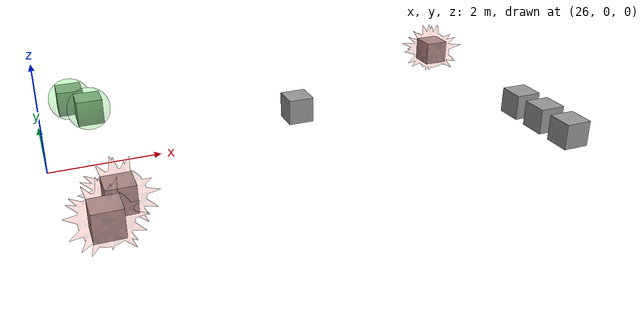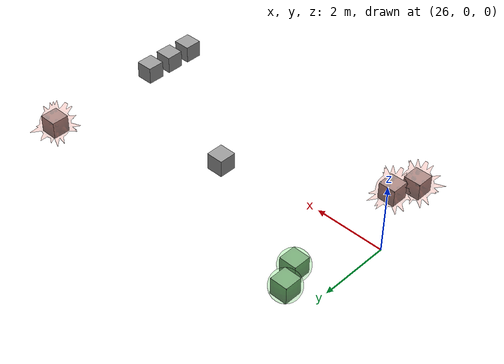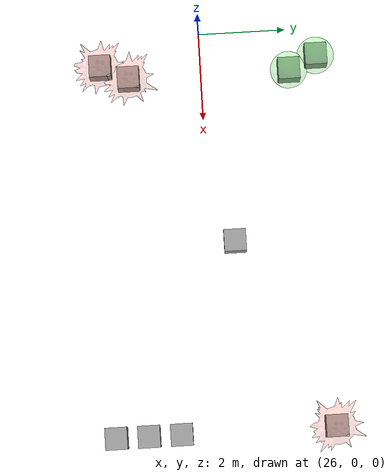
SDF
<sdf version="1.6">
 <world name="default">
  <model name="vis_cue_normal_2">
   <static>0</static>
   <pose>30.8778 0.555841 0.249997 0 -6e-06 0</pose>
   <link name="vis_cue_normal">
    <inertial>
     <mass>1</mass>
     <inertia>
      <ixx>0.166667</ixx>
      <ixy>0</ixy>
      <ixz>0</ixz>
      <iyy>0.166667</iyy>
      <iyz>0</iyz>
      <izz>0.166667</izz>
     </inertia>
    </inertial>
    <collision name="collision"><geometry><box><size>0.5 0.5 0.5</size></box></geometry></collision>
    <visual name="box_visual">
     <geometry><box><size>0.5 0.5 0.5</size></box></geometry>
     <material>
      <script><name>Gazebo/Grey</name><uri>file://media/materials/scripts/gazebo.material</uri></script>
     </material>
    </visual>
   </link>
  </model>
  <model name="trap_cont_2_ubias_m">
   <static>0</static>
   <static>0</static>
   <link name="repelling_cue_0::vis_cue_repel">
    <inertial>
     <mass>1</mass>
     <inertia>
      <ixx>0.166667</ixx>
      <ixy>0</ixy>
      <ixz>0</ixz>
      <iyy>0.166667</iyy>
      <iyz>0</iyz>
      <izz>0.166667</izz>
     </inertia>
    </inertial>
    <collision name="collision"><geometry><box><size>0.5 0.5 0.5</size></box></geometry></collision>
    <visual name="box_visual">
     <geometry><box><size>0.5 0.5 0.5</size></box></geometry>
     <material>
      <script><name>Gazebo/Grey</name><uri>file://media/materials/scripts/gazebo.material</uri></script>
     </material>
    </visual>
    <visual name="cue_visual">
     <geometry><mesh><uri>model://repelling_cue_2.dae</uri><scale>0.85 0.85 0.85</scale></mesh></geometry>
     <material>
      <ambient>1 0.3 0.2 0.2</ambient>
      <diffuse>1 0.3 0.2 0.2</diffuse>
      <specular>1 0.3 0.2 0.5</specular>
      <emissive>0.5 0 0 0.1</emissive>
     </material>
    </visual>
    <pose>0 -2.48 0.25 0 -0 0</pose>
   </link>
   <static>0</static>
   <link name="repelling_cue_1::vis_cue_repel">
    <inertial>
     <mass>1</mass>
     <inertia>
      <ixx>0.166667</ixx>
      <ixy>0</ixy>
      <ixz>0</ixz>
      <iyy>0.166667</iyy>
      <iyz>0</iyz>
      <izz>0.166667</izz>
     </inertia>
    </inertial>
    <collision name="collision"><geometry><box><size>0.5 0.5 0.5</size></box></geometry></collision>
    <visual name="box_visual">
     <geometry><box><size>0.5 0.5 0.5</size></box></geometry>
     <material>
      <script><name>Gazebo/Grey</name><uri>file://media/materials/scripts/gazebo.material</uri></script>
     </material>
    </visual>
    <visual name="cue_visual">
     <geometry><mesh><uri>model://repelling_cue_2.dae</uri><scale>0.85 0.85 0.85</scale></mesh></geometry>
     <material>
      <ambient>1 0.3 0.2 0.2</ambient>
      <diffuse>1 0.3 0.2 0.2</diffuse>
      <specular>1 0.3 0.2 0.5</specular>
      <emissive>0.5 0 0 0.1</emissive>
     </material>
    </visual>
    <pose>0.3 -1.845 0.25 0 -0 0</pose>
   </link>
   <static>0</static>
   <link name="attracting_cue_0::vis_cue_attract">
    <inertial>
     <mass>1</mass>
     <inertia>
      <ixx>0.166667</ixx>
      <ixy>0</ixy>
      <ixz>0</ixz>
      <iyy>0.166667</iyy>
      <iyz>0</iyz>
      <izz>0.166667</izz>
     </inertia>
    </inertial>
    <collision name="collision"><geometry><box><size>0.5 0.5 0.5</size></box></geometry></collision>
    <visual name="box_visual">
     <geometry><box><size>0.5 0.5 0.5</size></box></geometry>
     <material>
      <script><name>Gazebo/Grey</name><uri>file://media/materials/scripts/gazebo.material</uri></script>
     </material>
    </visual>
    <visual name="cue_visual">
     <geometry>
      <mesh><uri>model://vis_cue_attract/meshes/sphere.stl</uri><scale>0.85 0.85 0.85</scale></mesh>
     </geometry>
     <material>
      <ambient>0 1 0 0.15</ambient>
      <diffuse>0 1 0 0.15</diffuse>
      <specular>0 1 0 0.15</specular>
      <emissive>0 0 0 0</emissive>
     </material>
    </visual>
    <pose>0.3 1.845 0.25 0 -0 0</pose>
   </link>
   <static>0</static>
   <link name="attracting_cue_1::vis_cue_attract">
    <inertial>
     <mass>1</mass>
     <inertia>
      <ixx>0.166667</ixx>
      <ixy>0</ixy>
      <ixz>0</ixz>
      <iyy>0.166667</iyy>
      <iyz>0</iyz>
      <izz>0.166667</izz>
     </inertia>
    </inertial>
    <collision name="collision"><geometry><box><size>0.5 0.5 0.5</size></box></geometry></collision>
    <visual name="box_visual">
     <geometry><box><size>0.5 0.5 0.5</size></box></geometry>
     <material>
      <script><name>Gazebo/Grey</name><uri>file://media/materials/scripts/gazebo.material</uri></script>
     </material>
    </visual>
    <visual name="cue_visual">
     <geometry>
      <mesh><uri>model://vis_cue_attract/meshes/sphere.stl</uri><scale>0.85 0.85 0.85</scale></mesh>
     </geometry>
     <material>
      <ambient>0 1 0 0.15</ambient>
      <diffuse>0 1 0 0.15</diffuse>
      <specular>0 1 0 0.15</specular>
      <emissive>0 0 0 0</emissive>
     </material>
    </visual>
    <pose>0 2.48 0.25 0 -0 0</pose>
   </link>
   <pose>26.6934 0.180788 -2.1e-05 -7e-06 7e-06 0</pose>
  </model>
  <model name="trap_cont_1_repel_0">
   <static>0</static>
   <static>0</static>
   <link name="normal_cue_0::vis_cue_normal">
    <inertial>
     <mass>1</mass>
     <inertia>
      <ixx>0.166667</ixx>
      <ixy>0</ixy>
      <ixz>0</ixz>
      <iyy>0.166667</iyy>
      <iyz>0</iyz>
      <izz>0.166667</izz>
     </inertia>
    </inertial>
    <collision name="collision"><geometry><box><size>0.5 0.5 0.5</size></box></geometry></collision>
    <visual name="box_visual">
     <geometry><box><size>0.5 0.5 0.5</size></box></geometry>
     <material>
      <script><name>Gazebo/Grey</name><uri>file://media/materials/scripts/gazebo.material</uri></script>
     </material>
    </visual>
    <pose>0 -2.48 0.25 0 -0 0</pose>
   </link>
   <static>0</static>
   <link name="normal_cue_1::vis_cue_normal">
    <inertial>
     <mass>1</mass>
     <inertia>
      <ixx>0.166667</ixx>
      <ixy>0</ixy>
      <ixz>0</ixz>
      <iyy>0.166667</iyy>
      <iyz>0</iyz>
      <izz>0.166667</izz>
     </inertia>
    </inertial>
    <collision name="collision"><geometry><box><size>0.5 0.5 0.5</size></box></geometry></collision>
    <visual name="box_visual">
     <geometry><box><size>0.5 0.5 0.5</size></box></geometry>
     <material>
      <script><name>Gazebo/Grey</name><uri>file://media/materials/scripts/gazebo.material</uri></script>
     </material>
    </visual>
    <pose>0 -1.745 0.25 0 -0 0</pose>
   </link>
   <static>0</static>
   <link name="normal_cue_2::vis_cue_normal">
    <inertial>
     <mass>1</mass>
     <inertia>
      <ixx>0.166667</ixx>
      <ixy>0</ixy>
      <ixz>0</ixz>
      <iyy>0.166667</iyy>
      <iyz>0</iyz>
      <izz>0.166667</izz>
     </inertia>
    </inertial>
    <collision name="collision"><geometry><box><size>0.5 0.5 0.5</size></box></geometry></collision>
    <visual name="box_visual">
     <geometry><box><size>0.5 0.5 0.5</size></box></geometry>
     <material>
      <script><name>Gazebo/Grey</name><uri>file://media/materials/scripts/gazebo.material</uri></script>
     </material>
    </visual>
    <pose>0 -1.01 0.25 0 -0 0</pose>
   </link>
   <static>0</static>
   <link name="repelling_cue_0::vis_cue_repel">
    <inertial>
     <mass>1</mass>
     <inertia>
      <ixx>0.166667</ixx>
      <ixy>0</ixy>
      <ixz>0</ixz>
      <iyy>0.166667</iyy>
      <iyz>0</iyz>
      <izz>0.166667</izz>
     </inertia>
    </inertial>
    <collision name="collision"><geometry><box><size>0.5 0.5 0.5</size></box></geometry></collision>
    <visual name="box_visual">
     <geometry><box><size>0.5 0.5 0.5</size></box></geometry>
     <material>
      <script><name>Gazebo/Grey</name><uri>file://media/materials/scripts/gazebo.material</uri></script>
     </material>
    </visual>
    <visual name="cue_visual">
     <geometry><mesh><uri>model://repelling_cue_2.dae</uri><scale>0.85 0.85 0.85</scale></mesh></geometry>
     <material>
      <ambient>1 0.3 0.2 0.2</ambient>
      <diffuse>1 0.3 0.2 0.2</diffuse>
      <specular>1 0.3 0.2 0.5</specular>
      <emissive>0.5 0 0 0.1</emissive>
     </material>
    </visual>
    <pose>0 2.48 0.25 0 -0 0</pose>
   </link>
   <pose>35.1833 0.109631 8e-06 6e-06 -6e-06 0</pose>
  </model>
 </world>
</sdf>
